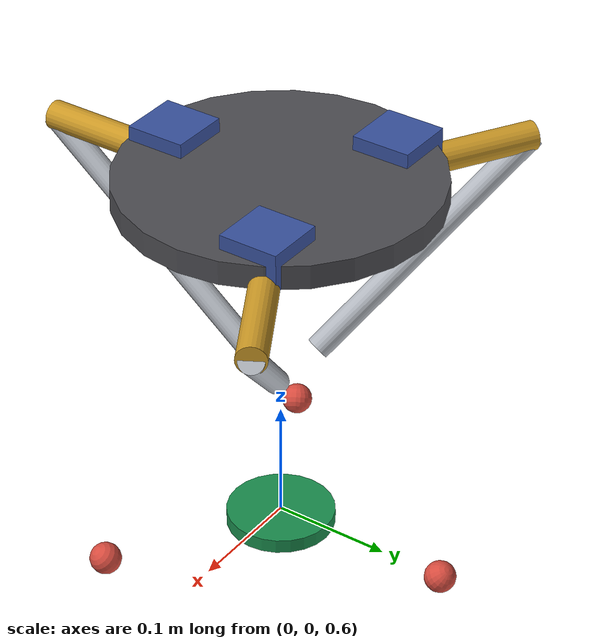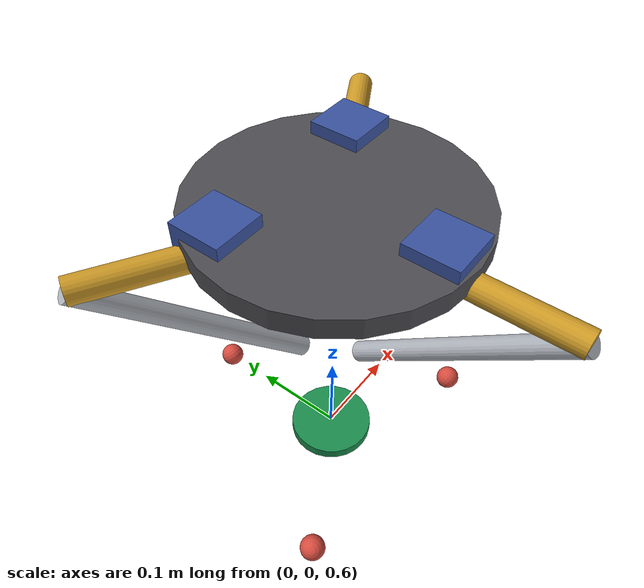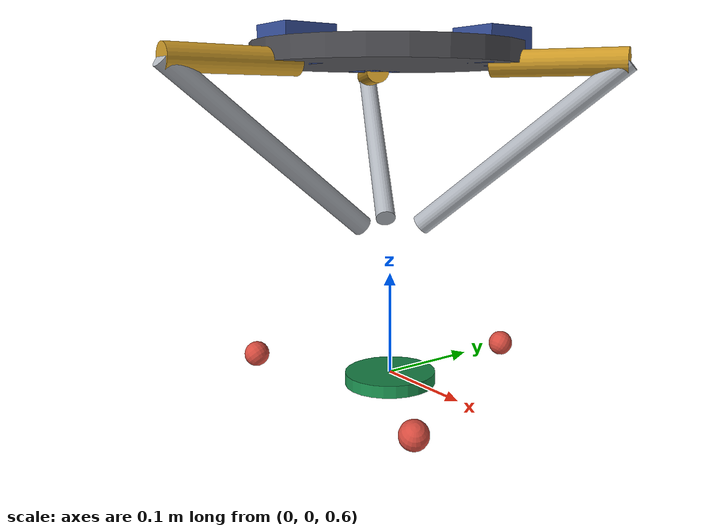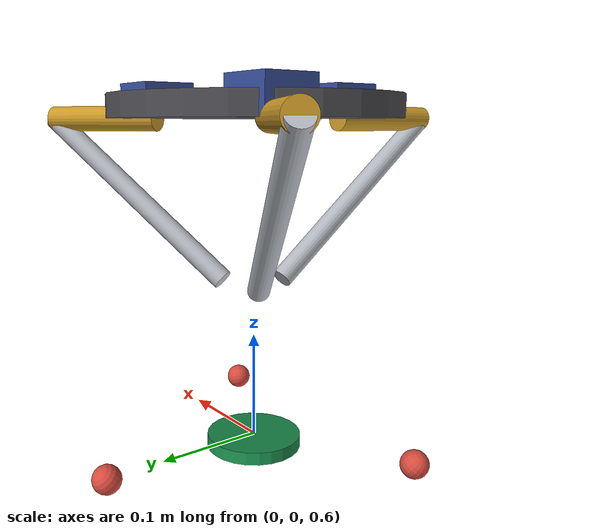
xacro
<?xml version="1.0"?>
<robot name="delta_arm" xmlns:xacro="http://www.ros.org/wiki/xacro">

  <!-- ==================== PARAMETERS ==================== -->
  <xacro:arg name="base_radius"     default="0.100"/>   <!-- pivot radius t  -->
  <xacro:arg name="platform_radius" default="0.0325"/>  <!-- platform radius pr -->
  <xacro:arg name="upper_arm_len"   default="0.120"/>   <!-- upper arm length rf -->
  <xacro:arg name="lower_arm_len"   default="0.240"/>   <!-- lower rod length re -->

  <xacro:arg name="shoulder_lower"  default="-0.10"/>
  <xacro:arg name="shoulder_upper"  default="3.20"/>

  <xacro:property name="t"          value="$(arg base_radius)" />
  <xacro:property name="pr"         value="$(arg platform_radius)" />
  <xacro:property name="rf"         value="$(arg upper_arm_len)" />
  <xacro:property name="re"         value="$(arg lower_arm_len)" />
  <xacro:property name="shoulder_lo" value="$(arg shoulder_lower)" />
  <xacro:property name="shoulder_hi" value="$(arg shoulder_upper)" />
  <xacro:property name="drop"        value="${sqrt(re**2 - (t + rf - pr)**2)}" />
  <xacro:property name="rod_pitch"   value="${atan2(drop, t + rf - pr)}" />
  <xacro:property name="elbow_pitch" value="${-rod_pitch}" />
  <xacro:property name="wrist_pitch" value="${pi - rod_pitch}" />
  <xacro:property name="base_z"     value="0.90" />      <!-- base plane height above ground -->
  <xacro:arg name="mount" default="false"/>

  <!-- Leg geometry: shoulder bases on radius t, yaw 0/120/240 deg. -->
  <xacro:property name="y0"  value="0.0"       />
  <xacro:property name="y1"  value="${2*pi/3}" />
  <xacro:property name="y2"  value="${4*pi/3}" />

  <xacro:property name="px0" value="${ t*sin(y0)}" />
  <xacro:property name="py0" value="${-t*cos(y0)}" />
  <xacro:property name="px1" value="${ t*sin(y1)}" />
  <xacro:property name="py1" value="${-t*cos(y1)}" />
  <xacro:property name="px2" value="${ t*sin(y2)}" />
  <xacro:property name="py2" value="${-t*cos(y2)}" />

  <!-- Platform joint points (same radials as the shoulders), in the tool0 rest frame. -->
  <xacro:property name="jx0" value="${ pr*sin(y0)}" />
  <xacro:property name="jy0" value="${-pr*cos(y0)}" />
  <xacro:property name="jx1" value="${ pr*sin(y1)}" />
  <xacro:property name="jy1" value="${-pr*cos(y1)}" />
  <xacro:property name="jx2" value="${ pr*sin(y2)}" />
  <xacro:property name="jy2" value="${-pr*cos(y2)}" />

  <!-- ==================== WORLD / BASE ==================== -->
  <xacro:unless value="$(arg mount)">
    <link name="world"/>

    <joint name="world_to_base" type="fixed">
      <origin xyz="0 0 ${base_z}" rpy="0 0 0"/>
      <parent link="world"/>
      <child link="base_link"/>
    </joint>
  </xacro:unless>

  <link name="base_link">
    <visual>
      <origin xyz="0 0 0.010" rpy="0 0 0"/>
      <geometry>
        <cylinder radius="0.130" length="0.020"/>
      </geometry>
      <material name="base_mat">
        <color rgba="0.30 0.30 0.32 1.0"/>
      </material>
    </visual>
    <!-- motor shoulder markers on the base plate -->
    <visual>
      <origin xyz="${px0} ${py0} 0.016" rpy="0 0 0"/>
      <geometry><box size="0.05 0.05 0.032"/></geometry>
      <material name="motor_mat">
        <color rgba="0.22 0.32 0.62 1.0"/>
      </material>
    </visual>
    <visual>
      <origin xyz="${px1} ${py1} 0.016" rpy="0 0 0"/>
      <geometry><box size="0.05 0.05 0.032"/></geometry>
      <material name="motor_mat2">
        <color rgba="0.22 0.32 0.62 1.0"/>
      </material>
    </visual>
    <visual>
      <origin xyz="${px2} ${py2} 0.016" rpy="0 0 0"/>
      <geometry><box size="0.05 0.05 0.032"/></geometry>
      <material name="motor_mat3">
        <color rgba="0.22 0.32 0.62 1.0"/>
      </material>
    </visual>
    <inertial>
      <mass value="1.0"/>
      <origin xyz="0 0 0.010" rpy="0 0 0"/>
      <inertia ixx="3.633e-3" ixy="0" ixz="0" iyy="3.633e-3" iyz="0" izz="7.2e-3"/>
    </inertial>
  </link>

  <!-- ===================== LEG MACRO ===================== -->
  <xacro:macro name="delta_leg" params="idx px py yaw">
    <!-- Mount: fixed link rotating the limb plane by yaw around the centre axis. -->
    <link name="mount_${idx}">
      <inertial>
        <mass value="0.001"/>
        <inertia ixx="1e-7" ixy="0" ixz="0" iyy="1e-7" iyz="0" izz="1e-7"/>
      </inertial>
    </link>
    <joint name="mount_${idx}_fixed" type="fixed">
      <origin xyz="${px} ${py} 0" rpy="0 0 ${yaw}"/>
      <parent link="base_link"/>
      <child link="mount_${idx}"/>
    </joint>

    <!-- Actuated shoulder: axis +X of mount, q=0 horizontal outward, +q downward. -->
    <link name="upper_arm_${idx}">
      <visual>
        <origin xyz="0 ${-rf / 2} 0" rpy="1.5707963 0 0"/>
        <geometry>
          <cylinder radius="0.012" length="${rf}"/>
        </geometry>
        <material name="arm_mat_${idx}">
          <color rgba="0.80 0.60 0.15 1.0"/>
        </material>
      </visual>
      <inertial>
        <mass value="0.08"/>
        <origin xyz="0 ${-rf / 2} 0" rpy="0 0 0"/>
        <inertia ixx="9.9e-5" ixy="0" ixz="0" iyy="5.8e-6" iyz="0" izz="9.9e-5"/>
      </inertial>
    </link>
    <joint name="shoulder_${idx}" type="revolute">
      <origin xyz="0 0 0" rpy="0 0 0"/>
      <parent link="mount_${idx}"/>
      <child link="upper_arm_${idx}"/>
      <axis xyz="1 0 0"/>
      <limit effort="20.0" lower="${shoulder_lo}" upper="${shoulder_hi}" velocity="6.28"/>
      <dynamics damping="0.1" friction="0.0"/>
    </joint>

    <!-- Elbow ball joint as a 3-revolute spherical chain (home bend = elbow_pitch). -->
    <link name="top_v1_${idx}">
      <inertial>
        <mass value="0.001"/>
        <inertia ixx="1e-7" ixy="0" ixz="0" iyy="1e-7" iyz="0" izz="1e-7"/>
      </inertial>
    </link>
    <joint name="top_A_${idx}" type="revolute">
      <origin xyz="0 ${-rf} 0" rpy="${elbow_pitch} 0 0"/>
      <parent link="upper_arm_${idx}"/>
      <child link="top_v1_${idx}"/>
      <axis xyz="1 0 0"/>
      <limit effort="1.0" lower="-3.14159" upper="3.14159" velocity="1.0"/>
    </joint>

    <link name="top_v2_${idx}">
      <inertial>
        <mass value="0.001"/>
        <inertia ixx="1e-7" ixy="0" ixz="0" iyy="1e-7" iyz="0" izz="1e-7"/>
      </inertial>
    </link>
    <joint name="top_B_${idx}" type="revolute">
      <origin xyz="0 0 0" rpy="0 0 0"/>
      <parent link="top_v1_${idx}"/>
      <child link="top_v2_${idx}"/>
      <axis xyz="0 1 0"/>
      <limit effort="1.0" lower="-3.14159" upper="3.14159" velocity="1.0"/>
    </joint>

    <!-- Lower rod reaches from the elbow to the platform joint (tip at the end). -->
    <link name="rod_${idx}">
      <visual>
        <origin xyz="0 ${re / 2} 0" rpy="1.5707963 0 0"/>
        <geometry>
          <cylinder radius="0.010" length="${re}"/>
        </geometry>
        <material name="rod_mat_${idx}">
          <color rgba="0.70 0.72 0.75 1.0"/>
        </material>
      </visual>
      <inertial>
        <mass value="0.12"/>
        <origin xyz="0 ${re / 2} 0" rpy="0 0 0"/>
        <inertia ixx="5.8e-4" ixy="0" ixz="0" iyy="6e-6" iyz="0" izz="5.8e-4"/>
      </inertial>
    </link>
    <joint name="top_C_${idx}" type="revolute">
      <origin xyz="0 0 0" rpy="0 0 0"/>
      <parent link="top_v2_${idx}"/>
      <child link="rod_${idx}"/>
      <axis xyz="0 0 1"/>
      <limit effort="1.0" lower="-3.14159" upper="3.14159" velocity="1.0"/>
    </joint>

    <!-- Tip link: weld target at the rod end (its fixed joint is preserved). -->
    <link name="tip_${idx}">
      <visual>
        <origin xyz="0 ${re} 0" rpy="0 0 0"/>
        <geometry>
          <sphere radius="0.013"/>
        </geometry>
        <material name="tip_mat_${idx}">
          <color rgba="0.85 0.30 0.25 1.0"/>
        </material>
      </visual>
      <inertial>
        <mass value="0.001"/>
        <inertia ixx="1e-7" ixy="0" ixz="0" iyy="1e-7" iyz="0" izz="1e-7"/>
      </inertial>
    </link>
    <joint name="tip_${idx}_joint" type="fixed">
      <origin xyz="0 ${re} 0" rpy="0 0 0"/>
      <parent link="rod_${idx}"/>
      <child link="tip_${idx}"/>
    </joint>
  </xacro:macro>

  <!-- ============ PLATFORM (passive 3-prismatic level chain) ============ -->
  <link name="tool_px">
    <inertial>
      <mass value="0.001"/>
      <inertia ixx="1e-7" ixy="0" ixz="0" iyy="1e-7" iyz="0" izz="1e-7"/>
    </inertial>
  </link>
  <joint name="tool_px_joint" type="prismatic">
    <origin xyz="0 0 0" rpy="0 0 0"/>
    <parent link="base_link"/>
    <child link="tool_px"/>
    <axis xyz="1 0 0"/>
    <limit effort="1.0" lower="-0.25" upper="0.25" velocity="1.0"/>
    <dynamics damping="0.05" friction="0.0"/>
  </joint>

  <link name="tool_py">
    <inertial>
      <mass value="0.001"/>
      <inertia ixx="1e-7" ixy="0" ixz="0" iyy="1e-7" iyz="0" izz="1e-7"/>
    </inertial>
  </link>
  <joint name="tool_py_joint" type="prismatic">
    <origin xyz="0 0 0" rpy="0 0 0"/>
    <parent link="tool_px"/>
    <child link="tool_py"/>
    <axis xyz="0 1 0"/>
    <limit effort="1.0" lower="-0.25" upper="0.25" velocity="1.0"/>
    <dynamics damping="0.05" friction="0.0"/>
  </joint>

  <!-- The platform itself (tool0). Its rest frame sits at the rest drop. -->
  <link name="tool0">
    <visual>
      <origin xyz="0 0 0.005" rpy="0 0 0"/>
      <geometry>
        <cylinder radius="0.045" length="0.012"/>
      </geometry>
      <material name="plat_mat">
        <color rgba="0.10 0.55 0.30 1.0"/>
      </material>
    </visual>
    <inertial>
      <mass value="0.15"/>
      <origin xyz="0 0 0.006" rpy="0 0 0"/>
      <inertia ixx="8.5e-5" ixy="0" ixz="0" iyy="8.5e-5" iyz="0" izz="1.6e-4"/>
    </inertial>
  </link>
  <joint name="tool0_joint" type="prismatic">
    <origin xyz="0 0 ${-drop}" rpy="0 0 0"/>
    <parent link="tool_py"/>
    <child link="tool0"/>
    <axis xyz="0 0 1"/>
    <limit effort="1.0" lower="-0.30" upper="-0.02" velocity="1.0"/>
    <dynamics damping="0.05" friction="0.0"/>
  </joint>

  <!-- ============ CLOSURE CHAIN MACRO (wrist spherical on tool0) ============ -->
  <xacro:macro name="closure_chain" params="idx jx jy yaw">
    <!-- Ends in a dummy link coincident with tip_${idx} at the home pose. -->
    <link name="cl_v1_${idx}">
      <inertial>
        <mass value="0.001"/>
        <inertia ixx="1e-7" ixy="0" ixz="0" iyy="1e-7" iyz="0" izz="1e-7"/>
      </inertial>
    </link>
    <joint name="cl_A_${idx}" type="revolute">
      <origin xyz="${jx} ${jy} 0" rpy="${wrist_pitch} 0 ${yaw}"/>
      <parent link="tool0"/>
      <child link="cl_v1_${idx}"/>
      <axis xyz="1 0 0"/>
      <limit effort="1.0" lower="-3.14159" upper="3.14159" velocity="1.0"/>
    </joint>

    <link name="cl_v2_${idx}">
      <inertial>
        <mass value="0.001"/>
        <inertia ixx="1e-7" ixy="0" ixz="0" iyy="1e-7" iyz="0" izz="1e-7"/>
      </inertial>
    </link>
    <joint name="cl_B_${idx}" type="revolute">
      <origin xyz="0 0 0" rpy="0 0 0"/>
      <parent link="cl_v1_${idx}"/>
      <child link="cl_v2_${idx}"/>
      <axis xyz="0 1 0"/>
      <limit effort="1.0" lower="-3.14159" upper="3.14159" velocity="1.0"/>
    </joint>

    <link name="dummy_${idx}">
      <inertial>
        <mass value="0.001"/>
        <inertia ixx="1e-7" ixy="0" ixz="0" iyy="1e-7" iyz="0" izz="1e-7"/>
      </inertial>
    </link>
    <joint name="cl_C_${idx}" type="revolute">
      <origin xyz="0 0 0" rpy="0 0 0"/>
      <parent link="cl_v2_${idx}"/>
      <child link="dummy_${idx}"/>
      <axis xyz="0 0 1"/>
      <limit effort="1.0" lower="-3.14159" upper="3.14159" velocity="1.0"/>
    </joint>
  </xacro:macro>

  <!-- ==================== INSTANTIATE ==================== -->
  <xacro:delta_leg idx="0" px="${px0}" py="${py0}" yaw="${y0}"/>
  <xacro:delta_leg idx="1" px="${px1}" py="${py1}" yaw="${y1}"/>
  <xacro:delta_leg idx="2" px="${px2}" py="${py2}" yaw="${y2}"/>

  <xacro:closure_chain idx="0" jx="${jx0}" jy="${jy0}" yaw="${y0}"/>
  <xacro:closure_chain idx="1" jx="${jx1}" jy="${jy1}" yaw="${y1}"/>
  <xacro:closure_chain idx="2" jx="${jx2}" jy="${jy2}" yaw="${y2}"/>

  <!-- Gazebo physics plugins: loop closure welds + joint controllers. -->
  <xacro:include filename="delta_arm.gazebo.xacro"/>
</robot>
